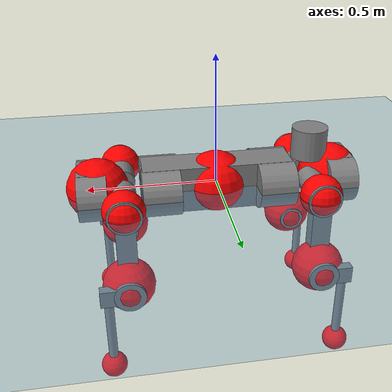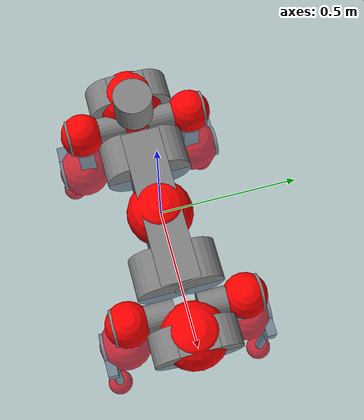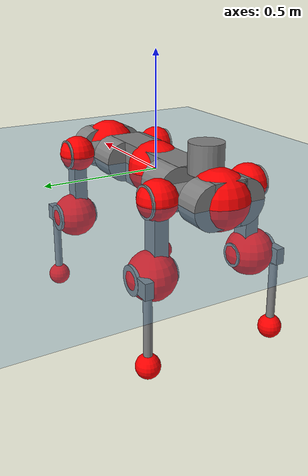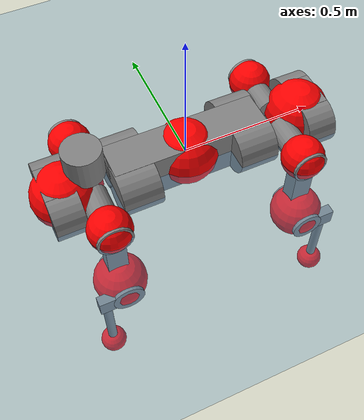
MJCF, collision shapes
<mujoco model="anymal_c">
  <compiler angle="radian" assetdir="assets" balanceinertia="true" inertiafromgeom="false"/>

  <option timestep="0.005" density="1.2" viscosity="2e-05"/>

  <size nkey="1"/>

  <visual>
    <quality shadowsize="8192"/>
    <map shadowclip="0.5"/>
  </visual>

  <default>
    <default class="/">
      <material specular="0" shininess="0.25"/>
      <geom contype="0" conaffinity="0" group="1" solref="-1000 -80"/>
      <site size="0.01 0.005 0.005" group="5"/>
      <general forcelimited="true" forcerange="-80 80" biastype="affine" gainprm="80" biasprm="0 -80 -2"/>
      <default class="anymal_c">
        <joint armature="0.01" damping="0.01" frictionloss="0.1"/>
        <default class="visual">
          <geom type="mesh" group="2"/>
          <default class="visual_zflip"/>
        </default>
        <default class="collision">
          <geom type="cylinder" group="3"/>
          <default class="foot">
            <geom size="0.03 0 0" type="sphere" condim="6" priority="1" friction="0.8 0.02 0.01" solimp="0.015 1 0.03"/>
          </default>
        </default>
      </default>
      <default class="reward_collision_sphere">
        <geom group="5" rgba="1 0 0 1"/>
      </default>
    </default>
  </default>

  <asset>
    <texture type="skybox" colorspace="auto" name="//unnamed_texture_0" builtin="gradient" rgb1="0.95 0.95 0.95" rgb2="0.95 0.95 0.95" width="100" height="600"/>
    <texture type="2d" colorspace="auto" name="texplane" builtin="checker" rgb1="0.345 0.575 0.748" rgb2="0.345 0.575 0.748" markrgb="1 1 1" width="512" height="512"/>
    <texture type="2d" colorspace="linear" name="base" file="base.png"/>
    <texture type="2d" colorspace="linear" name="top_shell" file="top_shell.png"/>
    <texture type="2d" colorspace="linear" name="bottom_shell" file="bottom_shell.png"/>
    <texture type="2d" colorspace="linear" name="remote" file="remote.png"/>
    <texture type="2d" colorspace="linear" name="hatch" file="hatch.png"/>
    <texture type="2d" colorspace="linear" name="handle" file="handle.png"/>
    <texture type="2d" colorspace="linear" name="face" file="face.png"/>
    <texture type="2d" colorspace="linear" name="battery" file="battery.png"/>
    <texture type="2d" colorspace="linear" name="lidar_cage" file="lidar_cage.png"/>
    <texture type="2d" colorspace="linear" name="depth_camera" file="depth_camera.png"/>
    <texture type="2d" colorspace="linear" name="wide_angle_camera" file="wide_angle_camera.png"/>
    <texture type="2d" colorspace="linear" name="lidar" file="lidar.png"/>
    <texture type="2d" colorspace="linear" name="drive" file="drive.png"/>
    <texture type="2d" colorspace="linear" name="hip_l" file="hip_l.png"/>
    <texture type="2d" colorspace="linear" name="shank_l" file="shank_l.png"/>
    <texture type="2d" colorspace="linear" name="foot" file="foot.png"/>
    <texture type="2d" colorspace="linear" name="thigh" file="thigh.png"/>
    <texture type="2d" colorspace="linear" name="shank_r" file="shank_r.png"/>
    <texture type="2d" colorspace="linear" name="hip_r" file="hip_r.png"/>
    <material name="MatPlane" class="/" texture="texplane" texuniform="true" texrepeat="2 2" specular="0.9" shininess="0.5"/>
    <material name="black_plastic" class="/" rgba="0.007 0.007 0.007 1"/>
    <material name="green" class="/" rgba="0.052 0.178 0.033 1"/>
    <material name="red" class="/" rgba="0.178 0.006 0.005 1"/>
    <material name="yellow" class="/" rgba="0.178 0.119 0.006 1"/>
    <material name="lwl" class="/" rgba="0.8 0.8 0.8 1"/>
    <material name="base" class="/" texture="base"/>
    <material name="top_shell" class="/" texture="top_shell"/>
    <material name="bottom_shell" class="/" texture="bottom_shell"/>
    <material name="hip_l" class="/" texture="hip_l"/>
    <material name="thigh" class="/" texture="thigh"/>
    <material name="shank_l" class="/" texture="shank_l"/>
    <material name="foot" class="/" texture="foot"/>
    <material name="hip_r" class="/" texture="hip_r"/>
    <material name="shank" class="/" texture="shank_r"/>
    <material name="hatch" class="/" texture="hatch"/>
    <material name="remote" class="/" texture="remote"/>
    <material name="handle" class="/" texture="handle"/>
    <material name="face" class="/" texture="face"/>
    <material name="depth_camera" class="/" texture="depth_camera"/>
    <material name="wide_angle_camera" class="/" texture="wide_angle_camera"/>
    <material name="battery" class="/" texture="battery"/>
    <material name="lidar_cage" class="/" texture="lidar_cage"/>
    <material name="lidar" class="/" texture="lidar"/>
    <material name="drive" class="/" texture="drive"/>
    <mesh name="base_0" class="/" file="base_0.obj"/>
    <mesh name="base_1" class="/" file="base_1.obj"/>
    <mesh name="base_2" class="/" file="base_2.obj"/>
    <mesh name="base_3" class="/" file="base_3.obj"/>
    <mesh name="base_4" class="/" file="base_4.obj"/>
    <mesh name="base_5" class="/" file="base_5.obj"/>
    <mesh name="top_shell" class="/" file="top_shell.obj"/>
    <mesh name="bottom_shell" class="/" file="bottom_shell.obj"/>
    <mesh name="remote" class="/" file="remote.obj"/>
    <mesh name="handle" class="/" file="handle.obj"/>
    <mesh name="face" class="/" file="face.obj"/>
    <mesh name="wide_angle_camera" class="/" file="wide_angle_camera.obj"/>
    <mesh name="depth_camera" class="/" file="depth_camera.obj"/>
    <mesh name="battery" class="/" file="battery.obj"/>
    <mesh name="lidar_cage" class="/" file="lidar_cage.obj"/>
    <mesh name="lidar" class="/" file="lidar.obj"/>
    <mesh name="drive" class="/" file="drive.obj"/>
    <mesh name="hip_l" class="/" file="hip_l.obj"/>
    <mesh name="thigh" class="/" file="thigh.obj"/>
    <mesh name="shank_l" class="/" file="shank_l.obj"/>
    <mesh name="foot" class="/" file="foot.obj"/>
    <mesh name="hip_r" class="/" file="hip_r.obj"/>
    <mesh name="hatch" class="/" file="hatch.obj"/>
    <mesh name="shank_r" class="/" file="shank_r.obj"/>
  </asset>

  <worldbody>
    <geom name="floor" class="/" size="100 100 0.125" type="plane" group="0" material="MatPlane"/>
    <light name="toplight_shadow" class="/" pos="0 0 5" dir="0.0990148 0.0990148 -0.990148" type="directional" ambient="0.04 0.04 0.04" diffuse="0.55 0.55 0.55" specular="0.12 0.12 0.12"/>
    <light name="toplight_fill" class="/" pos="0 0 5" dir="0.0990148 0.0990148 -0.990148" type="directional" castshadow="false" ambient="0.04 0.04 0.04" diffuse="0.3 0.3 0.3" specular="0.08 0.08 0.08"/>
    <body name="trunk" childclass="anymal_c" pos="-0.000215231 -0.00165048 0.000838023" quat="1 -0.000360567 -0.000751348 0.000105507">
      <inertial pos="0.00126514 -0.00270824 0.0526879" quat="0.500278 0.502471 0.500995 0.496234" mass="18.8838" diaginertia="0.657971 0.427326 0.26874"/>
      <joint name="//unnamed_joint_0" type="free" armature="0" damping="0" frictionloss="0"/>
      <geom name="//unnamed_geom_1" class="visual" material="green" mesh="base_0"/>
      <geom name="//unnamed_geom_2" class="visual" material="yellow" mesh="base_1"/>
      <geom name="//unnamed_geom_3" class="visual" material="red" mesh="base_2"/>
      <geom name="//unnamed_geom_4" class="visual" material="black_plastic" mesh="base_3"/>
      <geom name="//unnamed_geom_5" class="visual" material="lwl" mesh="base_4"/>
      <geom name="//unnamed_geom_6" class="visual" material="base" mesh="base_5"/>
      <geom name="trunk_1" class="collision" size="0.289627 0.0699099 0.0898841" type="box"/>
      <geom name="trunk_2" class="collision" size="0.0898841 0.0724067" pos="0.221655 0.0652978 0" quat="0.707107 0 0.707107 0"/>
      <geom name="trunk_3" class="collision" size="0.0898841 0.0724067" pos="-0.221655 0.0652978 0" quat="0.707107 0 0.707107 0"/>
      <geom name="trunk_4" class="collision" size="0.0898841 0.0724067" pos="0.221655 -0.0652978 0" quat="0.707107 0 0.707107 0"/>
      <geom name="trunk_5" class="collision" size="0.0898841 0.0724067" pos="-0.221655 -0.0652978 0" quat="0.707107 0 0.707107 0"/>
      <geom name="//unnamed_geom_12" class="visual" material="top_shell" mesh="top_shell"/>
      <geom name="//unnamed_geom_13" class="visual" material="bottom_shell" mesh="bottom_shell"/>
      <geom name="//unnamed_geom_14" class="visual" material="remote" mesh="remote"/>
      <geom name="//unnamed_geom_15" class="visual" material="handle" mesh="handle"/>
      <geom name="//unnamed_geom_16" class="visual" pos="0.422418 0 0" quat="1 0 0 0" material="face" mesh="face"/>
      <geom name="trunk_6" class="collision" size="0.0549292 0.0699099 0.0898841" pos="0.478468 0 0" type="box"/>
      <geom name="//unnamed_geom_18" class="collision" size="0.0898841 0.0549292" pos="0.478468 0.0652978 0" quat="0.707107 0 0.707107 0"/>
      <geom name="//unnamed_geom_19" class="collision" size="0.0898841 0.0549292" pos="0.478468 -0.0652978 0" quat="0.707107 0 0.707107 0"/>
      <geom name="//unnamed_geom_20" class="visual" pos="0.470469 0 -0.0306818" quat="0.965926 0 0.258819 0" material="depth_camera" mesh="depth_camera"/>
      <geom name="//unnamed_geom_21" class="visual" pos="0.522799 0 0.0156318" material="wide_angle_camera" mesh="wide_angle_camera"/>
      <geom name="//unnamed_geom_22" class="visual_zflip" pos="-0.422418 0 0" quat="0 0 0 1" material="face" mesh="face"/>
      <geom name="trunk_7" class="collision" size="0.0549292 0.0699099 0.0898841" pos="-0.478468 0 0" quat="0 0 0 1" type="box"/>
      <geom name="//unnamed_geom_24" class="collision" size="0.0898841 0.0549292" pos="-0.478468 -0.0652978 0" quat="0 -0.707107 0 0.707107"/>
      <geom name="//unnamed_geom_25" class="collision" size="0.0898841 0.0549292" pos="-0.478468 0.0652978 0" quat="0 -0.707107 0 0.707107"/>
      <geom name="//unnamed_geom_26" class="visual" pos="-0.470469 0 -0.0306818" quat="0 -0.258819 0 0.965926" material="depth_camera" mesh="depth_camera"/>
      <geom name="//unnamed_geom_27" class="visual_zflip" pos="-0.522799 0 0.0156318" quat="0 0 0 1" material="wide_angle_camera" mesh="wide_angle_camera"/>
      <geom name="//unnamed_geom_28" class="visual" material="battery" mesh="battery"/>
      <geom name="//unnamed_geom_29" class="visual" pos="0 0.0701928 0.0301435" quat="0.683013 -0.183013 0.183013 0.683013" material="depth_camera" mesh="depth_camera"/>
      <geom name="//unnamed_geom_30" class="visual" pos="0 -0.0701928 0.0301435" quat="0.683013 0.183013 0.183013 -0.683013" material="depth_camera" mesh="depth_camera"/>
      <geom name="//unnamed_geom_31" class="visual" pos="-0.370953 0 0.0767495" quat="1 0 0 0" material="lidar_cage" mesh="lidar_cage"/>
      <geom name="trunk_8" class="collision" size="0.0699099 0.0599228" pos="-0.370953 0 0.139402"/>
      <geom name="//unnamed_geom_33" class="visual" pos="-0.370953 -3.38952e-05 0.148487" quat="0.707107 0 0 -0.707107" material="lidar" mesh="lidar"/>
      <geom name="//unnamed_geom_34" class="visual" pos="0.305628 0.0970535 -1.92139e-09" quat="0.258819 0.965926 0 0" material="drive" mesh="drive"/>
      <geom name="//unnamed_geom_35" class="visual" pos="0.305628 -0.0970535 1.92139e-09" quat="0.258819 -0.965926 0 0" material="drive" mesh="drive"/>
      <geom name="//unnamed_geom_36" class="visual" pos="-0.305628 0.0970535 1.92139e-09" quat="0 0 0.965926 -0.258819" material="drive" mesh="drive"/>
      <geom name="//unnamed_geom_37" class="visual" pos="-0.305628 -0.0970535 -1.92139e-09" quat="0 0 -0.965926 -0.258819" material="drive" mesh="drive"/>
      <geom name="//unnamed_geom_38" class="visual" pos="0.118216 0 0.0762274" quat="1 0 0 0" material="hatch" mesh="hatch"/>
      <geom name="//unnamed_geom_39" class="reward_collision_sphere" size="0.119846"/>
      <geom name="//unnamed_geom_40" class="reward_collision_sphere" size="0.119846" pos="0.458596 0 0"/>
      <geom name="//unnamed_geom_41" class="reward_collision_sphere" size="0.119846" pos="-0.458596 0 0"/>
      <site name="imu" pos="0.254241 0.00997673 0.0505587" size="0.00998713"/>
      <camera name="track" pos="0 -1.86565 0" quat="0.707107 0.707107 0 0" mode="trackcom"/>
      <camera name="ego_camera" pos="0.458596 0 -0.0417684" quat="-0.5 -0.5 0.5 0.5"/>
      <body name="LF_HIP" pos="0.305644 0.0972741 -3.77707e-06" quat="0.258746 0.965945 9.83912e-05 8.95018e-05">
        <inertial pos="0.0579164 -0.0163577 -0.00881641" quat="-0.131373 0.712855 -0.123644 0.677711" mass="2.74993" diaginertia="0.0063266 0.00341931 0.00400562"/>
        <joint name="LF_HAA" pos="0 0 0" axis="1 0.000226726 0.000810219" range="-0.731231 0.510576" armature="0.00961741" damping="0.013208" frictionloss="0.100315"/>
        <geom name="//unnamed_geom_42" class="visual" pos="0 -0.000113027 1.85645e-05" quat="0.258819 -0.965926 0 0" material="hip_l" mesh="hip_l"/>
        <geom name="//unnamed_geom_43" class="visual" pos="0.0610442 -0.0728716 -0.0428963" quat="0.183013 -0.683013 0.683013 0.183013" material="drive" mesh="drive"/>
        <geom name="//unnamed_geom_44" class="collision" size="0.0499356 0.0699099" pos="0.0610442 -0.0111564 -0.00721027" quat="-0.353553 -0.612372 0.612372 -0.353553"/>
        <body name="LF_THIGH" pos="0.0638037 -0.0675783 -0.0449214" quat="0.182738 -0.683806 0.682171 0.183462">
          <inertial pos="0.0314777 0.00272106 -0.255652" quat="0.993279 -0.00436122 -0.080223 0.083323" mass="3.07907" diaginertia="0.0320973 0.0217837 0.00519546"/>
          <joint name="LF_HFE" pos="0 0 0" axis="0.99995 -0.00744927 0.00662451" stiffness="0.00122399" range="-3.18083 3.08436" armature="0.0113083" damping="0.00426728" frictionloss="0.0954249"/>
          <geom name="//unnamed_geom_45" class="visual" pos="0.00171654 2.70486e-06 0" quat="0.707107 0 0 -0.707107" material="thigh" mesh="thigh"/>
          <geom name="//unnamed_geom_46" class="collision" size="0.0649163 0.0399485" pos="0.0407641 0 0" quat="0.5 0.5 -0.5 -0.5"/>
          <geom name="//unnamed_geom_47" class="collision" size="0.0374517 0.0299614 0.141132" pos="0.030573 0 -0.147562" quat="0.707107 0 0 -0.707107" type="box"/>
          <geom name="//unnamed_geom_48" class="visual" pos="0.102216 0 -0.2976" quat="1 0 0 0" material="drive" mesh="drive"/>
          <geom name="//unnamed_geom_49" class="collision" size="0.0499356 0.0699099" pos="0.0308788 0 -0.2976" quat="0.707107 0 0.707107 0"/>
          <geom name="//unnamed_geom_50" class="reward_collision_sphere" size="0.079897" pos="0.0254775 0 0"/>
          <body name="LF_SHANK" pos="0.10199 -0.00065976 -0.29573" quat="1 -3.92613e-06 -1.43945e-06 5.74732e-06">
            <inertial pos="0.00292052 -0.0584339 -0.0866432" quat="0.992752 -0.11691 -0.000261887 -0.0278376" mass="0.57108" diaginertia="0.0110041 0.0066261 0.00136725"/>
            <joint name="LF_KFE" pos="0 0 0" axis="0.999999 -0.000889297 0.00098933" range="-3.08705 3.18545" armature="0.00954382" damping="0" frictionloss="0.0961555"/>
            <geom name="//unnamed_geom_51" class="visual" pos="0.000559725 0.00298448 0" quat="0.707107 0 0 -0.707107" material="shank_l" mesh="shank_l"/>
            <geom name="LF_kfe_act" class="collision" size="0.0599228 0.0199743" pos="0.020382 0 0" quat="0.5 0.5 -0.5 -0.5"/>
            <geom name="//unnamed_geom_53" class="collision" size="0.057425 0.0337066 0.0189755" pos="0.020382 -0.0536366 0" quat="0.5 0.5 -0.5 -0.5" type="box"/>
            <geom name="//unnamed_geom_54" class="visual" pos="0.0132991 -0.0810803 -0.352912" quat="0.382683 0 0 -0.92388" material="foot" mesh="foot"/>
            <geom name="LF_calf" class="collision" size="0.0174775 0.14107" pos="0.0132993 -0.0820421 -0.176456" quat="0.707107 0 0 -0.707107"/>
            <geom name="LF_foot" class="foot" size="0.030689" pos="0.0132993 -0.0820421 -0.329417" quat="0.707107 0 0 -0.707107"/>
            <geom name="//unnamed_geom_57" class="reward_collision_sphere" size="0.0998713" pos="-0.0509551 0 0"/>
            <geom name="//unnamed_geom_58" class="reward_collision_sphere" size="0.0499356" pos="0.0132993 -0.0820421 -0.329417"/>
            <site name="LF_foot" class="foot" pos="0.0132993 -0.0820421 -0.329417" quat="0.707107 0 0 -0.707107" size="0.00998713"/>
          </body>
        </body>
      </body>
      <body name="RF_HIP" pos="0.30339 -0.0977669 -0.00222149" quat="0.258558 -0.965996 9.8766e-05 -0.000327542">
        <inertial pos="0.0584146 0.0144858 -0.0088679" quat="0.140152 0.672942 0.138362 0.712996" mass="2.79363" diaginertia="0.00631196 0.0034707 0.00406913"/>
        <joint name="RF_HAA" pos="0 0 0" axis="0.999976 0.0051782 -0.0046318" range="-0.490765 0.774235" armature="0.00992399" damping="0.0100631" frictionloss="0.0950799"/>
        <geom name="//unnamed_geom_59" class="visual" pos="0 0.000113026 1.85645e-05" quat="0.258819 0.965926 0 0" material="hip_r" mesh="hip_r"/>
        <geom name="//unnamed_geom_60" class="visual" pos="0.0610442 0.0728716 -0.0428963" quat="0.183013 0.683013 0.683013 -0.183013" material="drive" mesh="drive"/>
        <geom name="//unnamed_geom_61" class="collision" size="0.0499356 0.0699099" pos="0.0610442 0.0111564 -0.00721027" quat="-0.353553 0.612372 0.612372 0.353553"/>
        <body name="RF_THIGH" pos="0.0616043 0.06932 -0.0462365" quat="0.183459 0.683048 0.682894 -0.182878">
          <inertial pos="0.0320821 -0.00163774 -0.253642" quat="0.992661 -0.00248498 -0.0816503 0.0891743" mass="3.02038" diaginertia="0.0325341 0.0211081 0.00519221"/>
          <joint name="RF_HFE" pos="0 0 0" axis="1 -0.000625985 -0.000717558" stiffness="0.0142628" range="-3.15089 3.12749" armature="0.00876539" damping="0.0235734" frictionloss="0.0931867"/>
          <geom name="//unnamed_geom_62" class="visual" pos="0.00171654 2.70486e-06 0" quat="0.707107 0 0 -0.707107" material="thigh" mesh="thigh"/>
          <geom name="//unnamed_geom_63" class="collision" size="0.0649163 0.0399485" pos="0.0407641 0 0" quat="0.5 0.5 0.5 0.5"/>
          <geom name="//unnamed_geom_64" class="collision" size="0.0374517 0.0299614 0.141132" pos="0.030573 0 -0.147562" quat="0.707107 0 0 0.707107" type="box"/>
          <geom name="//unnamed_geom_65" class="visual" pos="0.102216 0 -0.2976" quat="1 0 0 0" material="drive" mesh="drive"/>
          <geom name="//unnamed_geom_66" class="collision" size="0.0499356 0.0699099" pos="0.0308788 0 -0.2976" quat="0.707107 0 0.707107 0"/>
          <geom name="//unnamed_geom_67" class="reward_collision_sphere" size="0.079897" pos="0.0254775 0 0"/>
          <body name="RF_SHANK" pos="0.103271 0.000324837 -0.295477" quat="1 -0.000486879 0.000217823 0.000125218">
            <inertial pos="0.00448157 0.0587712 -0.0835195" quat="0.99298 0.115446 -0.00112129 0.0257174" mass="0.604924" diaginertia="0.0115924 0.00690046 0.00141357"/>
            <joint name="RF_KFE" pos="0 0 0" axis="0.999995 0.00304893 -0.000828712" range="-3.14105 3.11685" armature="0.0103763" damping="0" frictionloss="0.10228"/>
            <geom name="//unnamed_geom_68" class="visual" pos="0.000559722 -0.00298448 0" quat="0.707107 0 0 0.707107" material="shank" mesh="shank_r"/>
            <geom name="RF_kfe_act" class="collision" size="0.0599228 0.0199743" pos="0.020382 0 0" quat="0.5 0.5 0.5 0.5"/>
            <geom name="//unnamed_geom_70" class="collision" size="0.057425 0.0337066 0.0189755" pos="0.020382 0.0536366 0" quat="0.5 0.5 0.5 0.5" type="box"/>
            <geom name="//unnamed_geom_71" class="visual" pos="0.0132994 0.0810803 -0.352912" quat="0.382683 0 0 0.92388" material="foot" mesh="foot"/>
            <geom name="RF_calf" class="collision" size="0.0174775 0.14107" pos="0.0132993 0.0820421 -0.176456" quat="0.707107 0 0 0.707107"/>
            <geom name="RF_foot" class="foot" size="0.0272199" pos="0.0132993 0.0820421 -0.329417" quat="0.707107 0 0 0.707107"/>
            <geom name="//unnamed_geom_74" class="reward_collision_sphere" size="0.0998713" pos="-0.0509551 0 0"/>
            <geom name="//unnamed_geom_75" class="reward_collision_sphere" size="0.0499356" pos="0.0132993 0.0820421 -0.329417"/>
            <site name="RF_foot" class="foot" pos="0.0132993 0.0820421 -0.329417" quat="0.707107 0 0 0.707107" size="0.00998713"/>
          </body>
        </body>
      </body>
      <body name="LH_HIP" pos="-0.305054 0.0980177 0.00225592" quat="0.000224193 -6.18017e-05 0.965906 -0.258895">
        <inertial pos="0.0568698 0.0151883 -0.00751989" quat="0.135654 0.68013 0.122754 0.709896" mass="2.68968" diaginertia="0.00654749 0.00346858 0.00415142"/>
        <joint name="LH_HAA" pos="0 0 0" axis="0.999995 -0.00214762 -0.00233921" stiffness="0.00540519" range="-0.444388 0.735898" armature="0.0105179" damping="0.00846764" frictionloss="0.110949"/>
        <geom name="//unnamed_geom_76" class="visual" pos="0 0.000113026 1.85645e-05" quat="-0.258819 -0.965926 0 0" material="hip_r" mesh="hip_r"/>
        <geom name="//unnamed_geom_77" class="visual" pos="0.0610442 0.0728716 -0.0428963" quat="0.183013 0.683013 0.683013 -0.183013" material="drive" mesh="drive"/>
        <geom name="//unnamed_geom_78" class="collision" size="0.0499356 0.0699099" pos="0.0610442 0.0111564 -0.00721027" quat="-0.353553 0.612372 0.612372 0.353553"/>
        <body name="LH_THIGH" pos="0.0605406 0.0681362 -0.0432953" quat="0.181767 0.682601 0.683669 -0.183338">
          <inertial pos="0.032018 0.00249527 -0.256978" quat="0.992323 -0.0135997 -0.077986 0.0950172" mass="2.94851" diaginertia="0.0328232 0.0213227 0.00535279"/>
          <joint name="LH_HFE" pos="0 0 0" axis="0.999911 0.000188768 0.0133209" stiffness="0.00355271" range="-3.12991 3.12863" armature="0.0107795" damping="0.0204976" frictionloss="0.0952321"/>
          <geom name="//unnamed_geom_79" class="visual" pos="0.00171654 2.70486e-06 0" quat="0.707107 0 0 -0.707107" material="thigh" mesh="thigh"/>
          <geom name="//unnamed_geom_80" class="collision" size="0.0649163 0.0399485" pos="0.0407641 0 0" quat="0.5 0.5 -0.5 -0.5"/>
          <geom name="//unnamed_geom_81" class="collision" size="0.0374517 0.0299614 0.141132" pos="0.030573 0 -0.147562" quat="0.707107 0 0 -0.707107" type="box"/>
          <geom name="//unnamed_geom_82" class="visual" pos="0.102216 0 -0.2976" quat="1 0 0 0" material="drive" mesh="drive"/>
          <geom name="//unnamed_geom_83" class="collision" size="0.0499356 0.0699099" pos="0.0308788 0 -0.2976" quat="0.707107 0 0.707107 0"/>
          <geom name="//unnamed_geom_84" class="reward_collision_sphere" size="0.079897" pos="0.0254775 0 0"/>
          <body name="LH_SHANK" pos="0.102249 -0.000178516 -0.296739" quat="1 2.18025e-05 -5.96654e-05 2.00233e-05">
            <inertial pos="0.00534664 0.0594455 -0.0841702" quat="0.992875 0.116026 -0.000857918 0.0271277" mass="0.586291" diaginertia="0.0107892 0.00629339 0.00133647"/>
            <joint name="LH_KFE" pos="0 0 0" axis="0.999979 -0.00110268 0.0064157" stiffness="0.00710553" range="-3.08982 3.13363" armature="0.0113216" damping="0.0178963" frictionloss="0.0924672"/>
            <geom name="//unnamed_geom_85" class="visual" pos="0.000559722 -0.00298448 0" quat="-0.707107 0 0 -0.707107" material="shank" mesh="shank_r"/>
            <geom name="LH_kfe_act" class="collision" size="0.0599228 0.0199743" pos="0.020382 0 0" quat="0.5 0.5 -0.5 -0.5"/>
            <geom name="//unnamed_geom_87" class="collision" size="0.057425 0.0337066 0.0189755" pos="0.020382 0.0536366 0" quat="0.5 0.5 -0.5 -0.5" type="box"/>
            <geom name="//unnamed_geom_88" class="visual" pos="0.0132994 0.0810803 -0.352912" quat="-0.382683 0 0 -0.92388" material="foot" mesh="foot"/>
            <geom name="LH_calf" class="collision" size="0.0174775 0.14107" pos="0.0132993 0.0820421 -0.176456" quat="0.707107 0 0 -0.707107"/>
            <geom name="LH_foot" class="foot" size="0.0300444" pos="0.0132993 0.0820421 -0.329417" quat="0.707107 0 0 -0.707107"/>
            <geom name="//unnamed_geom_91" class="reward_collision_sphere" size="0.0998713" pos="-0.0509551 0 0"/>
            <geom name="//unnamed_geom_92" class="reward_collision_sphere" size="0.0499356" pos="0.0132993 0.0820421 -0.329417"/>
            <site name="LH_foot" class="foot" pos="0.0132993 0.0820421 -0.329417" quat="0.707107 0 0 -0.707107" size="0.00998713"/>
          </body>
        </body>
      </body>
      <body name="RH_HIP" pos="-0.308192 -0.0978951 0.000684346" quat="0.00104591 -0.000909016 -0.96601 -0.258499">
        <inertial pos="0.0581951 -0.0135262 -0.00804227" quat="-0.128107 0.709724 -0.135324 0.679387" mass="2.74463" diaginertia="0.00638459 0.00341548 0.0041885"/>
        <joint name="RH_HAA" pos="0 0 0" axis="0.999999 0.000895837 0.00103036" stiffness="0.00521466" range="-0.701392 0.528905" armature="0.0113156" damping="0.0123632" frictionloss="0.106343"/>
        <geom name="//unnamed_geom_93" class="visual" pos="0 -0.000113027 1.85645e-05" quat="-0.258819 0.965926 0 0" material="hip_l" mesh="hip_l"/>
        <geom name="//unnamed_geom_94" class="visual" pos="0.0610442 -0.0728716 -0.0428963" quat="-0.183013 0.683013 -0.683013 -0.183013" material="drive" mesh="drive"/>
        <geom name="//unnamed_geom_95" class="collision" size="0.0499356 0.0699099" pos="0.0610442 -0.0111564 -0.00721027" quat="0.353553 0.612372 -0.612372 0.353553"/>
        <body name="RH_THIGH" pos="0.0591933 -0.0651373 -0.0436785" quat="-0.182812 0.683071 -0.683009 -0.18301">
          <inertial pos="0.0314047 -0.00221802 -0.256732" quat="0.993133 -0.00797047 -0.0789184 0.0859972" mass="2.98394" diaginertia="0.0329084 0.0210736 0.00502443"/>
          <joint name="RH_HFE" pos="0 0 0" axis="0.999992 0.000900317 -0.0039757" stiffness="0.00756454" range="-3.13371 3.19464" armature="0.0086521" damping="0.0201071" frictionloss="0.0985555"/>
          <geom name="//unnamed_geom_96" class="visual" pos="0.00171654 2.70486e-06 0" quat="0.707107 0 0 -0.707107" material="thigh" mesh="thigh"/>
          <geom name="//unnamed_geom_97" class="collision" size="0.0649163 0.0399485" pos="0.0407641 0 0" quat="0.5 0.5 0.5 0.5"/>
          <geom name="//unnamed_geom_98" class="collision" size="0.0374517 0.0299614 0.141132" pos="0.030573 0 -0.147562" quat="0.707107 0 0 0.707107" type="box"/>
          <geom name="//unnamed_geom_99" class="visual" pos="0.102216 0 -0.2976" quat="1 0 0 0" material="drive" mesh="drive"/>
          <geom name="//unnamed_geom_100" class="collision" size="0.0499356 0.0699099" pos="0.0308788 0 -0.2976" quat="0.707107 0 0.707107 0"/>
          <geom name="//unnamed_geom_101" class="reward_collision_sphere" size="0.079897" pos="0.0254775 0 0"/>
          <body name="RH_SHANK" pos="0.102832 -0.000418493 -0.297391" quat="1 6.07825e-05 -8.27062e-05 -8.73736e-05">
            <inertial pos="0.00471391 -0.0580388 -0.0838745" quat="0.993034 -0.115108 -0.000411329 -0.0251865" mass="0.599306" diaginertia="0.011061 0.00657167 0.00139349"/>
            <joint name="RH_KFE" pos="0 0 0" axis="0.999992 -0.00115642 0.00383261" range="-3.07427 3.14242" armature="0.0100065" damping="0.0149381" frictionloss="0.104144"/>
            <geom name="//unnamed_geom_102" class="visual" pos="0.000559725 0.00298448 0" quat="0.707107 0 0 -0.707107" material="shank_l" mesh="shank_l"/>
            <geom name="RH_kfe_act" class="collision" size="0.0599228 0.0199743" pos="0.020382 0 0" quat="0.5 0.5 0.5 0.5"/>
            <geom name="//unnamed_geom_104" class="collision" size="0.057425 0.0337066 0.0189755" pos="0.020382 -0.0536366 0" quat="0.5 0.5 0.5 0.5" type="box"/>
            <geom name="//unnamed_geom_105" class="visual" pos="0.0132991 -0.0810803 -0.352912" quat="0.382683 0 0 -0.92388" material="foot" mesh="foot"/>
            <geom name="RH_calf" class="collision" size="0.0174775 0.14107" pos="0.0132993 -0.0820421 -0.176456" quat="0.707107 0 0 0.707107"/>
            <geom name="RH_foot" class="foot" size="0.0312195" pos="0.0132993 -0.0820421 -0.329417" quat="0.707107 0 0 0.707107"/>
            <geom name="//unnamed_geom_108" class="reward_collision_sphere" size="0.0998713" pos="-0.0509551 0 0"/>
            <geom name="//unnamed_geom_109" class="reward_collision_sphere" size="0.0499356" pos="0.0132993 -0.0820421 -0.329417"/>
            <site name="RH_foot" class="foot" pos="0.0132993 -0.0820421 -0.329417" quat="0.707107 0 0 0.707107" size="0.00998713"/>
          </body>
        </body>
      </body>
    </body>
  </worldbody>

  <contact>
    <pair class="/" geom1="floor" geom2="LF_foot" name="//unnamed_contact_0"/>
    <pair class="/" geom1="floor" geom2="RF_foot" name="//unnamed_contact_1"/>
    <pair class="/" geom1="floor" geom2="LH_foot" name="//unnamed_contact_2"/>
    <pair class="/" geom1="floor" geom2="RH_foot" name="//unnamed_contact_3"/>
  </contact>

  <actuator>
    <general name="LF_HAA" class="/" joint="LF_HAA" forcerange="-82.6364 82.6364" gainprm="80.2065" biasprm="0 -80.2065 -1.9934"/>
    <general name="LF_HFE" class="/" joint="LF_HFE" forcerange="-79.6653 79.6653" gainprm="80.2065" biasprm="0 -80.2065 -1.9934"/>
    <general name="LF_KFE" class="/" joint="LF_KFE" forcerange="-80.2028 80.2028" gainprm="80.2065" biasprm="0 -80.2065 -1.9934"/>
    <general name="RF_HAA" class="/" joint="RF_HAA" forcerange="-79.2602 79.2602" gainprm="80.2065" biasprm="0 -80.2065 -1.9934"/>
    <general name="RF_HFE" class="/" joint="RF_HFE" forcerange="-82.2656 82.2656" gainprm="80.2065" biasprm="0 -80.2065 -1.9934"/>
    <general name="RF_KFE" class="/" joint="RF_KFE" forcerange="-74.0312 74.0312" gainprm="80.2065" biasprm="0 -80.2065 -1.9934"/>
    <general name="LH_HAA" class="/" joint="LH_HAA" forcerange="-83.2178 83.2178" gainprm="80.2065" biasprm="0 -80.2065 -1.9934"/>
    <general name="LH_HFE" class="/" joint="LH_HFE" forcerange="-80.8272 80.8272" gainprm="80.2065" biasprm="0 -80.2065 -1.9934"/>
    <general name="LH_KFE" class="/" joint="LH_KFE" forcerange="-78.6253 78.6253" gainprm="80.2065" biasprm="0 -80.2065 -1.9934"/>
    <general name="RH_HAA" class="/" joint="RH_HAA" forcerange="-79.9902 79.9902" gainprm="80.2065" biasprm="0 -80.2065 -1.9934"/>
    <general name="RH_HFE" class="/" joint="RH_HFE" forcerange="-79.1621 79.1621" gainprm="80.2065" biasprm="0 -80.2065 -1.9934"/>
    <general name="RH_KFE" class="/" joint="RH_KFE" forcerange="-88.1536 88.1536" gainprm="80.2065" biasprm="0 -80.2065 -1.9934"/>
  </actuator>

  <sensor>
    <gyro site="imu" name="imu_angular_velocity"/>
    <velocimeter site="imu" name="imu_linear_velocity"/>
    <framelinvel objtype="site" objname="LF_foot" name="LF_foot_global_linear_velocity"/>
    <framelinvel objtype="site" objname="RF_foot" name="RF_foot_global_linear_velocity"/>
    <framelinvel objtype="site" objname="LH_foot" name="LH_foot_global_linear_velocity"/>
    <framelinvel objtype="site" objname="RH_foot" name="RH_foot_global_linear_velocity"/>
  </sensor>

  <keyframe>
    <key name="home" qpos="0 0 0.55 1 0 0 0 0 0.4 -0.8 0 -0.4 0.8 0 -0.4 0.8 0 0.4 -0.8"/>
  </keyframe>
</mujoco>
